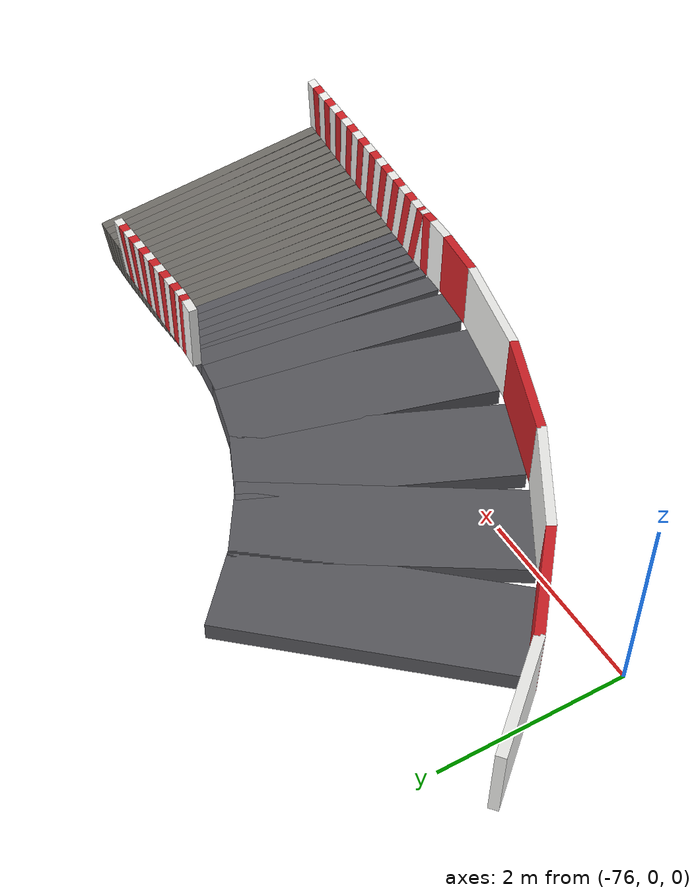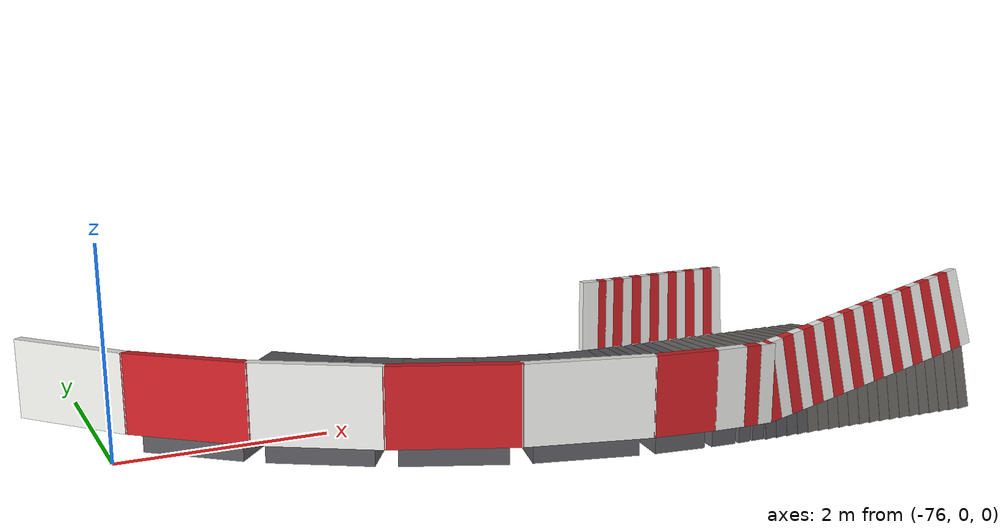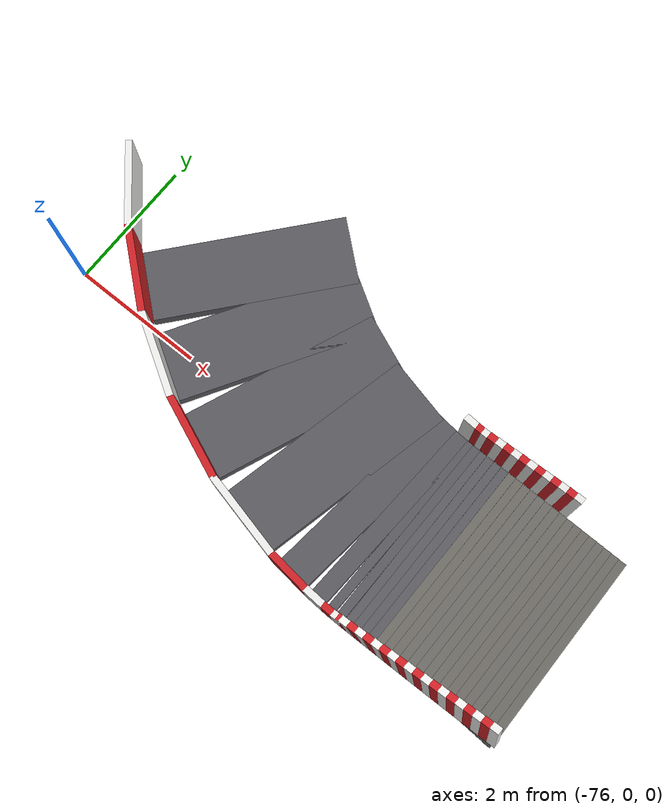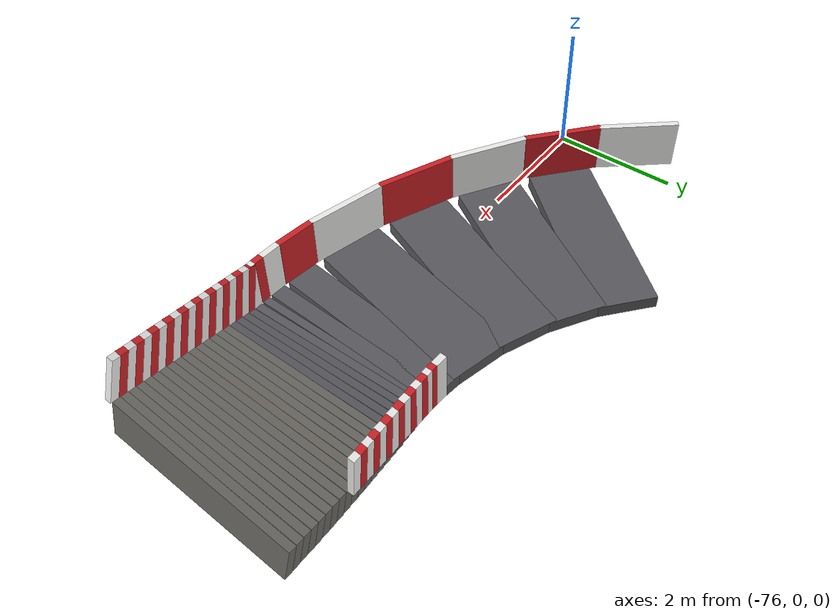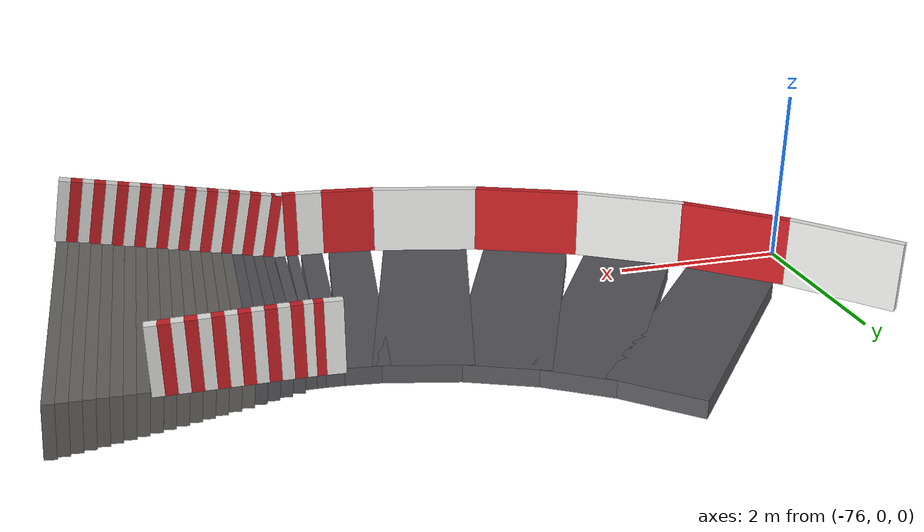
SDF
<sdf version="1.10">
 <world name="ika_parkur">
  <model name="parkur_road">
   <static>true</static>
   <link name="road_0057">
    <pose>-67.529225 -0.056599 -0.100323 0.164496 0.097746 3.141593</pose>
    <collision name="road_0057_col">
     <geometry><box><size>0.128112 3 0.691266</size></box></geometry>
     <surface>
      <friction><ode><mu>1</mu><mu2>1</mu2></ode></friction>
      <contact><ode><kp>1000000</kp><kd>1</kd></ode></contact>
     </surface>
    </collision>
    <visual name="road_0057_vis">
     <geometry><box><size>0.128112 3 0.691266</size></box></geometry>
     <material>
      <ambient>0.42 0.41 0.39 1</ambient>
      <diffuse>0.42 0.41 0.39 1</diffuse>
      <specular>0.1 0.1 0.1 1</specular>
     </material>
    </visual>
   </link>
   <link name="road_0058">
    <pose>-67.655355 -0.051898 -0.101059 0.156271 0.097746 3.141593</pose>
    <collision name="road_0058_col">
     <geometry><box><size>0.128112 3 0.666909</size></box></geometry>
     <surface>
      <friction><ode><mu>1</mu><mu2>1</mu2></ode></friction>
      <contact><ode><kp>1000000</kp><kd>1</kd></ode></contact>
     </surface>
    </collision>
    <visual name="road_0058_vis">
     <geometry><box><size>0.128112 3 0.666909</size></box></geometry>
     <material>
      <ambient>0.42 0.41 0.39 1</ambient>
      <diffuse>0.42 0.41 0.39 1</diffuse>
      <specular>0.1 0.1 0.1 1</specular>
     </material>
    </visual>
   </link>
   <link name="road_0059">
    <pose>-67.781491 -0.047388 -0.101727 0.148047 0.097746 3.141593</pose>
    <collision name="road_0059_col">
     <geometry><box><size>0.128112 3 0.642519</size></box></geometry>
     <surface>
      <friction><ode><mu>1</mu><mu2>1</mu2></ode></friction>
      <contact><ode><kp>1000000</kp><kd>1</kd></ode></contact>
     </surface>
    </collision>
    <visual name="road_0059_vis">
     <geometry><box><size>0.128112 3 0.642519</size></box></geometry>
     <material>
      <ambient>0.42 0.41 0.39 1</ambient>
      <diffuse>0.42 0.41 0.39 1</diffuse>
      <specular>0.1 0.1 0.1 1</specular>
     </material>
    </visual>
   </link>
   <link name="road_0060">
    <pose>-67.907634 -0.043071 -0.102328 0.139822 0.097746 3.141593</pose>
    <collision name="road_0060_col">
     <geometry><box><size>0.128112 3 0.6181</size></box></geometry>
     <surface>
      <friction><ode><mu>1</mu><mu2>1</mu2></ode></friction>
      <contact><ode><kp>1000000</kp><kd>1</kd></ode></contact>
     </surface>
    </collision>
    <visual name="road_0060_vis">
     <geometry><box><size>0.128112 3 0.6181</size></box></geometry>
     <material>
      <ambient>0.42 0.41 0.39 1</ambient>
      <diffuse>0.42 0.41 0.39 1</diffuse>
      <specular>0.1 0.1 0.1 1</specular>
     </material>
    </visual>
   </link>
   <link name="road_0061">
    <pose>-68.033783 -0.038949 -0.102868 0.131597 0.097746 3.141593</pose>
    <collision name="road_0061_col">
     <geometry><box><size>0.128112 3 0.593653</size></box></geometry>
     <surface>
      <friction><ode><mu>1</mu><mu2>1</mu2></ode></friction>
      <contact><ode><kp>1000000</kp><kd>1</kd></ode></contact>
     </surface>
    </collision>
    <visual name="road_0061_vis">
     <geometry><box><size>0.128112 3 0.593653</size></box></geometry>
     <material>
      <ambient>0.42 0.41 0.39 1</ambient>
      <diffuse>0.42 0.41 0.39 1</diffuse>
      <specular>0.1 0.1 0.1 1</specular>
     </material>
    </visual>
   </link>
   <link name="road_0062">
    <pose>-68.159938 -0.035021 -0.103348 0.123372 0.097746 3.141593</pose>
    <collision name="road_0062_col">
     <geometry><box><size>0.128112 3 0.569178</size></box></geometry>
     <surface>
      <friction><ode><mu>1</mu><mu2>1</mu2></ode></friction>
      <contact><ode><kp>1000000</kp><kd>1</kd></ode></contact>
     </surface>
    </collision>
    <visual name="road_0062_vis">
     <geometry><box><size>0.128112 3 0.569178</size></box></geometry>
     <material>
      <ambient>0.42 0.41 0.39 1</ambient>
      <diffuse>0.42 0.41 0.39 1</diffuse>
      <specular>0.1 0.1 0.1 1</specular>
     </material>
    </visual>
   </link>
   <link name="road_0063">
    <pose>-68.286098 -0.03129 -0.103772 0.115147 0.097746 3.141593</pose>
    <collision name="road_0063_col">
     <geometry><box><size>0.128112 3 0.544679</size></box></geometry>
     <surface>
      <friction><ode><mu>1</mu><mu2>1</mu2></ode></friction>
      <contact><ode><kp>1000000</kp><kd>1</kd></ode></contact>
     </surface>
    </collision>
    <visual name="road_0063_vis">
     <geometry><box><size>0.128112 3 0.544679</size></box></geometry>
     <material>
      <ambient>0.42 0.41 0.39 1</ambient>
      <diffuse>0.42 0.41 0.39 1</diffuse>
      <specular>0.1 0.1 0.1 1</specular>
     </material>
    </visual>
   </link>
   <link name="road_0064">
    <pose>-68.412264 -0.027755 -0.104143 0.106923 0.097746 3.141593</pose>
    <collision name="road_0064_col">
     <geometry><box><size>0.128112 3 0.520157</size></box></geometry>
     <surface>
      <friction><ode><mu>1</mu><mu2>1</mu2></ode></friction>
      <contact><ode><kp>1000000</kp><kd>1</kd></ode></contact>
     </surface>
    </collision>
    <visual name="road_0064_vis">
     <geometry><box><size>0.128112 3 0.520157</size></box></geometry>
     <material>
      <ambient>0.42 0.41 0.39 1</ambient>
      <diffuse>0.42 0.41 0.39 1</diffuse>
      <specular>0.1 0.1 0.1 1</specular>
     </material>
    </visual>
   </link>
   <link name="road_0065">
    <pose>-68.538434 -0.024418 -0.104465 0.098698 0.097746 3.141593</pose>
    <collision name="road_0065_col">
     <geometry><box><size>0.128112 3 0.495613</size></box></geometry>
     <surface>
      <friction><ode><mu>1</mu><mu2>1</mu2></ode></friction>
      <contact><ode><kp>1000000</kp><kd>1</kd></ode></contact>
     </surface>
    </collision>
    <visual name="road_0065_vis">
     <geometry><box><size>0.128112 3 0.495613</size></box></geometry>
     <material>
      <ambient>0.42 0.41 0.39 1</ambient>
      <diffuse>0.42 0.41 0.39 1</diffuse>
      <specular>0.1 0.1 0.1 1</specular>
     </material>
    </visual>
   </link>
   <link name="road_0066">
    <pose>-68.664609 -0.02128 -0.10474 0.090473 0.097746 3.141593</pose>
    <collision name="road_0066_col">
     <geometry><box><size>0.128112 3 0.471049</size></box></geometry>
     <surface>
      <friction><ode><mu>1</mu><mu2>1</mu2></ode></friction>
      <contact><ode><kp>1000000</kp><kd>1</kd></ode></contact>
     </surface>
    </collision>
    <visual name="road_0066_vis">
     <geometry><box><size>0.128112 3 0.471049</size></box></geometry>
     <material>
      <ambient>0.42 0.41 0.39 1</ambient>
      <diffuse>0.42 0.41 0.39 1</diffuse>
      <specular>0.1 0.1 0.1 1</specular>
     </material>
    </visual>
   </link>
   <link name="road_0067">
    <pose>-68.790788 -0.01834 -0.104973 0.082248 0.097746 3.141593</pose>
    <collision name="road_0067_col">
     <geometry><box><size>0.128112 3 0.446466</size></box></geometry>
     <surface>
      <friction><ode><mu>1</mu><mu2>1</mu2></ode></friction>
      <contact><ode><kp>1000000</kp><kd>1</kd></ode></contact>
     </surface>
    </collision>
    <visual name="road_0067_vis">
     <geometry><box><size>0.128112 3 0.446466</size></box></geometry>
     <material>
      <ambient>0.42 0.41 0.39 1</ambient>
      <diffuse>0.42 0.41 0.39 1</diffuse>
      <specular>0.1 0.1 0.1 1</specular>
     </material>
    </visual>
   </link>
   <link name="road_0068">
    <pose>-68.916971 -0.0156 -0.105165 0.074023 0.097746 3.141593</pose>
    <collision name="road_0068_col">
     <geometry><box><size>0.128112 3 0.421867</size></box></geometry>
     <surface>
      <friction><ode><mu>1</mu><mu2>1</mu2></ode></friction>
      <contact><ode><kp>1000000</kp><kd>1</kd></ode></contact>
     </surface>
    </collision>
    <visual name="road_0068_vis">
     <geometry><box><size>0.128112 3 0.421867</size></box></geometry>
     <material>
      <ambient>0.42 0.41 0.39 1</ambient>
      <diffuse>0.42 0.41 0.39 1</diffuse>
      <specular>0.1 0.1 0.1 1</specular>
     </material>
    </visual>
   </link>
   <link name="road_0069">
    <pose>-69.043158 -0.01306 -0.105321 0.065799 0.097746 3.141593</pose>
    <collision name="road_0069_col">
     <geometry><box><size>0.128112 3 0.397253</size></box></geometry>
     <surface>
      <friction><ode><mu>1</mu><mu2>1</mu2></ode></friction>
      <contact><ode><kp>1000000</kp><kd>1</kd></ode></contact>
     </surface>
    </collision>
    <visual name="road_0069_vis">
     <geometry><box><size>0.128112 3 0.397253</size></box></geometry>
     <material>
      <ambient>0.42 0.41 0.39 1</ambient>
      <diffuse>0.42 0.41 0.39 1</diffuse>
      <specular>0.1 0.1 0.1 1</specular>
     </material>
    </visual>
   </link>
   <link name="road_0070">
    <pose>-69.169348 -0.010721 -0.105444 0.057574 0.097746 3.141593</pose>
    <collision name="road_0070_col">
     <geometry><box><size>0.128112 3 0.372626</size></box></geometry>
     <surface>
      <friction><ode><mu>1</mu><mu2>1</mu2></ode></friction>
      <contact><ode><kp>1000000</kp><kd>1</kd></ode></contact>
     </surface>
    </collision>
    <visual name="road_0070_vis">
     <geometry><box><size>0.128112 3 0.372626</size></box></geometry>
     <material>
      <ambient>0.42 0.41 0.39 1</ambient>
      <diffuse>0.42 0.41 0.39 1</diffuse>
      <specular>0.1 0.1 0.1 1</specular>
     </material>
    </visual>
   </link>
   <link name="road_0071">
    <pose>-69.295541 -0.008583 -0.105537 0.049349 0.097746 3.141593</pose>
    <collision name="road_0071_col">
     <geometry><box><size>0.128112 3 0.347987</size></box></geometry>
     <surface>
      <friction><ode><mu>1</mu><mu2>1</mu2></ode></friction>
      <contact><ode><kp>1000000</kp><kd>1</kd></ode></contact>
     </surface>
    </collision>
    <visual name="road_0071_vis">
     <geometry><box><size>0.128112 3 0.347987</size></box></geometry>
     <material>
      <ambient>0.42 0.41 0.39 1</ambient>
      <diffuse>0.42 0.41 0.39 1</diffuse>
      <specular>0.1 0.1 0.1 1</specular>
     </material>
    </visual>
   </link>
   <link name="road_0072">
    <pose>-69.421736 -0.006647 -0.105603 0.041124 0.097746 3.141593</pose>
    <collision name="road_0072_col">
     <geometry><box><size>0.128112 3 0.323337</size></box></geometry>
     <surface>
      <friction><ode><mu>1</mu><mu2>1</mu2></ode></friction>
      <contact><ode><kp>1000000</kp><kd>1</kd></ode></contact>
     </surface>
    </collision>
    <visual name="road_0072_vis">
     <geometry><box><size>0.128112 3 0.323337</size></box></geometry>
     <material>
      <ambient>0.42 0.41 0.39 1</ambient>
      <diffuse>0.42 0.41 0.39 1</diffuse>
      <specular>0.1 0.1 0.1 1</specular>
     </material>
    </visual>
   </link>
   <link name="road_0073">
    <pose>-69.547934 -0.004912 -0.105646 0.032899 0.097746 3.141593</pose>
    <collision name="road_0073_col">
     <geometry><box><size>0.128112 3 0.29868</size></box></geometry>
     <surface>
      <friction><ode><mu>1</mu><mu2>1</mu2></ode></friction>
      <contact><ode><kp>1000000</kp><kd>1</kd></ode></contact>
     </surface>
    </collision>
    <visual name="road_0073_vis">
     <geometry><box><size>0.128112 3 0.29868</size></box></geometry>
     <material>
      <ambient>0.35 0.35 0.37 1</ambient>
      <diffuse>0.35 0.35 0.37 1</diffuse>
      <specular>0.1 0.1 0.1 1</specular>
     </material>
    </visual>
   </link>
   <link name="road_0074">
    <pose>-69.674133 -0.00338 -0.105669 0.024674 0.097746 3.141593</pose>
    <collision name="road_0074_col">
     <geometry><box><size>0.128112 3 0.274016</size></box></geometry>
     <surface>
      <friction><ode><mu>1</mu><mu2>1</mu2></ode></friction>
      <contact><ode><kp>1000000</kp><kd>1</kd></ode></contact>
     </surface>
    </collision>
    <visual name="road_0074_vis">
     <geometry><box><size>0.128112 3 0.274016</size></box></geometry>
     <material>
      <ambient>0.35 0.35 0.37 1</ambient>
      <diffuse>0.35 0.35 0.37 1</diffuse>
      <specular>0.1 0.1 0.1 1</specular>
     </material>
    </visual>
   </link>
   <link name="road_0075">
    <pose>-69.800335 -0.002051 -0.105676 0.01645 0.097746 3.141593</pose>
    <collision name="road_0075_col">
     <geometry><box><size>0.128112 3 0.249347</size></box></geometry>
     <surface>
      <friction><ode><mu>1</mu><mu2>1</mu2></ode></friction>
      <contact><ode><kp>1000000</kp><kd>1</kd></ode></contact>
     </surface>
    </collision>
    <visual name="road_0075_vis">
     <geometry><box><size>0.128112 3 0.249347</size></box></geometry>
     <material>
      <ambient>0.35 0.35 0.37 1</ambient>
      <diffuse>0.35 0.35 0.37 1</diffuse>
      <specular>0.1 0.1 0.1 1</specular>
     </material>
    </visual>
   </link>
   <link name="road_0076">
    <pose>-69.926537 -0.000924 -0.105668 0.008225 0.097746 3.141593</pose>
    <collision name="road_0076_col">
     <geometry><box><size>0.128112 3 0.224674</size></box></geometry>
     <surface>
      <friction><ode><mu>1</mu><mu2>1</mu2></ode></friction>
      <contact><ode><kp>1000000</kp><kd>1</kd></ode></contact>
     </surface>
    </collision>
    <visual name="road_0076_vis">
     <geometry><box><size>0.128112 3 0.224674</size></box></geometry>
     <material>
      <ambient>0.35 0.35 0.37 1</ambient>
      <diffuse>0.35 0.35 0.37 1</diffuse>
      <specular>0.1 0.1 0.1 1</specular>
     </material>
    </visual>
   </link>
   <link name="road_0077">
    <pose>-70.06381 0.000626 -0.1 0 0 3.131775</pose>
    <collision name="road_0077_col">
     <geometry><box><size>0.130178 3 0.2</size></box></geometry>
     <surface>
      <friction><ode><mu>1</mu><mu2>1</mu2></ode></friction>
      <contact><ode><kp>1000000</kp><kd>1</kd></ode></contact>
     </surface>
    </collision>
    <visual name="road_0077_vis">
     <geometry><box><size>0.130178 3 0.2</size></box></geometry>
     <material>
      <ambient>0.35 0.35 0.37 1</ambient>
      <diffuse>0.35 0.35 0.37 1</diffuse>
      <specular>0.1 0.1 0.1 1</specular>
     </material>
    </visual>
   </link>
   <link name="road_0078">
    <pose>-70.191404 0.003132 -0.1 0 0 3.11214</pose>
    <collision name="road_0078_col">
     <geometry><box><size>0.130178 3 0.2</size></box></geometry>
     <surface>
      <friction><ode><mu>1</mu><mu2>1</mu2></ode></friction>
      <contact><ode><kp>1000000</kp><kd>1</kd></ode></contact>
     </surface>
    </collision>
    <visual name="road_0078_vis">
     <geometry><box><size>0.130178 3 0.2</size></box></geometry>
     <material>
      <ambient>0.35 0.35 0.37 1</ambient>
      <diffuse>0.35 0.35 0.37 1</diffuse>
      <specular>0.1 0.1 0.1 1</specular>
     </material>
    </visual>
   </link>
   <link name="road_0079">
    <pose>-70.382586 0.012524 -0.1 0 0 3.082688</pose>
    <collision name="road_0079_col">
     <geometry><box><size>0.260343 3 0.2</size></box></geometry>
     <surface>
      <friction><ode><mu>1</mu><mu2>1</mu2></ode></friction>
      <contact><ode><kp>1000000</kp><kd>1</kd></ode></contact>
     </surface>
    </collision>
    <visual name="road_0079_vis">
     <geometry><box><size>0.260343 3 0.2</size></box></geometry>
     <material>
      <ambient>0.35 0.35 0.37 1</ambient>
      <diffuse>0.35 0.35 0.37 1</diffuse>
      <specular>0.1 0.1 0.1 1</specular>
     </material>
    </visual>
   </link>
   <link name="road_0080">
    <pose>-70.763404 0.050032 -0.1 0 0 3.023783</pose>
    <collision name="road_0080_col">
     <geometry><box><size>0.520585 3 0.2</size></box></geometry>
     <surface>
      <friction><ode><mu>1</mu><mu2>1</mu2></ode></friction>
      <contact><ode><kp>1000000</kp><kd>1</kd></ode></contact>
     </surface>
    </collision>
    <visual name="road_0080_vis">
     <geometry><box><size>0.520585 3 0.2</size></box></geometry>
     <material>
      <ambient>0.35 0.35 0.37 1</ambient>
      <diffuse>0.35 0.35 0.37 1</diffuse>
      <specular>0.1 0.1 0.1 1</specular>
     </material>
    </visual>
   </link>
   <link name="road_0081">
    <pose>-71.512717 0.199079 -0.1 0 0 2.905973</pose>
    <collision name="road_0081_col">
     <geometry><box><size>1.040368 3 0.2</size></box></geometry>
     <surface>
      <friction><ode><mu>1</mu><mu2>1</mu2></ode></friction>
      <contact><ode><kp>1000000</kp><kd>1</kd></ode></contact>
     </surface>
    </collision>
    <visual name="road_0081_vis">
     <geometry><box><size>1.040368 3 0.2</size></box></geometry>
     <material>
      <ambient>0.35 0.35 0.37 1</ambient>
      <diffuse>0.35 0.35 0.37 1</diffuse>
      <specular>0.1 0.1 0.1 1</specular>
     </material>
    </visual>
   </link>
   <link name="road_0082">
    <pose>-72.479774 0.513295 -0.1 0 0 2.748894</pose>
    <collision name="road_0082_col">
     <geometry><box><size>1.040368 3 0.2</size></box></geometry>
     <surface>
      <friction><ode><mu>1</mu><mu2>1</mu2></ode></friction>
      <contact><ode><kp>1000000</kp><kd>1</kd></ode></contact>
     </surface>
    </collision>
    <visual name="road_0082_vis">
     <geometry><box><size>1.040368 3 0.2</size></box></geometry>
     <material>
      <ambient>0.35 0.35 0.37 1</ambient>
      <diffuse>0.35 0.35 0.37 1</diffuse>
      <specular>0.1 0.1 0.1 1</specular>
     </material>
    </visual>
   </link>
   <link name="road_0083">
    <pose>-73.385771 0.974924 -0.1 0 0 2.591814</pose>
    <collision name="road_0083_col">
     <geometry><box><size>1.040368 3 0.2</size></box></geometry>
     <surface>
      <friction><ode><mu>1</mu><mu2>1</mu2></ode></friction>
      <contact><ode><kp>1000000</kp><kd>1</kd></ode></contact>
     </surface>
    </collision>
    <visual name="road_0083_vis">
     <geometry><box><size>1.040368 3 0.2</size></box></geometry>
     <material>
      <ambient>0.35 0.35 0.37 1</ambient>
      <diffuse>0.35 0.35 0.37 1</diffuse>
      <specular>0.1 0.1 0.1 1</specular>
     </material>
    </visual>
   </link>
   <link name="road_0084">
    <pose>-74.208399 1.572598 -0.1 0 0 2.434734</pose>
    <collision name="road_0084_col">
     <geometry><box><size>1.040368 3 0.2</size></box></geometry>
     <surface>
      <friction><ode><mu>1</mu><mu2>1</mu2></ode></friction>
      <contact><ode><kp>1000000</kp><kd>1</kd></ode></contact>
     </surface>
    </collision>
    <visual name="road_0084_vis">
     <geometry><box><size>1.040368 3 0.2</size></box></geometry>
     <material>
      <ambient>0.35 0.35 0.37 1</ambient>
      <diffuse>0.35 0.35 0.37 1</diffuse>
      <specular>0.1 0.1 0.1 1</specular>
     </material>
    </visual>
   </link>
  </model>
  <model name="parkur_barriers">
   <static>true</static>
   <link name="barrier_l_0057">
    <pose>-67.640464 -1.465853 0.873578 0.164496 0.196155 -3.125307</pose>
    <collision name="barrier_l_0057_col">
     <geometry><box><size>0.13001 0.1 0.8</size></box></geometry>
     <surface>
      <friction><ode><mu>0.6</mu><mu2>0.6</mu2></ode></friction>
      <contact><ode><kp>1000000</kp><kd>1</kd></ode></contact>
     </surface>
    </collision>
    <visual name="barrier_l_0057_vis">
     <geometry><box><size>0.13001 0.1 0.8</size></box></geometry>
     <material>
      <ambient>0.93 0.93 0.92 1</ambient>
      <diffuse>0.93 0.93 0.92 1</diffuse>
      <specular>0.1 0.1 0.1 1</specular>
     </material>
    </visual>
   </link>
   <link name="barrier_l_0058">
    <pose>-67.765513 -1.471023 0.849234 0.156271 0.196283 -3.126135</pose>
    <collision name="barrier_l_0058_col">
     <geometry><box><size>0.130012 0.1 0.8</size></box></geometry>
     <surface>
      <friction><ode><mu>0.6</mu><mu2>0.6</mu2></ode></friction>
      <contact><ode><kp>1000000</kp><kd>1</kd></ode></contact>
     </surface>
    </collision>
    <visual name="barrier_l_0058_vis">
     <geometry><box><size>0.130012 0.1 0.8</size></box></geometry>
     <material>
      <ambient>0.81 0.13 0.15 1</ambient>
      <diffuse>0.81 0.13 0.15 1</diffuse>
      <specular>0.1 0.1 0.1 1</specular>
     </material>
    </visual>
   </link>
   <link name="barrier_l_0059">
    <pose>-67.890559 -1.476092 0.824847 0.148047 0.196405 -3.126965</pose>
    <collision name="barrier_l_0059_col">
     <geometry><box><size>0.130013 0.1 0.8</size></box></geometry>
     <surface>
      <friction><ode><mu>0.6</mu><mu2>0.6</mu2></ode></friction>
      <contact><ode><kp>1000000</kp><kd>1</kd></ode></contact>
     </surface>
    </collision>
    <visual name="barrier_l_0059_vis">
     <geometry><box><size>0.130013 0.1 0.8</size></box></geometry>
     <material>
      <ambient>0.93 0.93 0.92 1</ambient>
      <diffuse>0.93 0.93 0.92 1</diffuse>
      <specular>0.1 0.1 0.1 1</specular>
     </material>
    </visual>
   </link>
   <link name="barrier_l_0060">
    <pose>-68.015602 -1.481061 0.80042 0.139822 0.196519 -3.127795</pose>
    <collision name="barrier_l_0060_col">
     <geometry><box><size>0.130015 0.1 0.8</size></box></geometry>
     <surface>
      <friction><ode><mu>0.6</mu><mu2>0.6</mu2></ode></friction>
      <contact><ode><kp>1000000</kp><kd>1</kd></ode></contact>
     </surface>
    </collision>
    <visual name="barrier_l_0060_vis">
     <geometry><box><size>0.130015 0.1 0.8</size></box></geometry>
     <material>
      <ambient>0.81 0.13 0.15 1</ambient>
      <diffuse>0.81 0.13 0.15 1</diffuse>
      <specular>0.1 0.1 0.1 1</specular>
     </material>
    </visual>
   </link>
   <link name="barrier_l_0061">
    <pose>-68.140643 -1.48593 0.775953 0.131597 0.196627 -3.128627</pose>
    <collision name="barrier_l_0061_col">
     <geometry><box><size>0.130016 0.1 0.8</size></box></geometry>
     <surface>
      <friction><ode><mu>0.6</mu><mu2>0.6</mu2></ode></friction>
      <contact><ode><kp>1000000</kp><kd>1</kd></ode></contact>
     </surface>
    </collision>
    <visual name="barrier_l_0061_vis">
     <geometry><box><size>0.130016 0.1 0.8</size></box></geometry>
     <material>
      <ambient>0.93 0.93 0.92 1</ambient>
      <diffuse>0.93 0.93 0.92 1</diffuse>
      <specular>0.1 0.1 0.1 1</specular>
     </material>
    </visual>
   </link>
   <link name="barrier_l_0062">
    <pose>-68.265682 -1.490699 0.751446 0.123372 0.196729 -3.129459</pose>
    <collision name="barrier_l_0062_col">
     <geometry><box><size>0.130017 0.1 0.8</size></box></geometry>
     <surface>
      <friction><ode><mu>0.6</mu><mu2>0.6</mu2></ode></friction>
      <contact><ode><kp>1000000</kp><kd>1</kd></ode></contact>
     </surface>
    </collision>
    <visual name="barrier_l_0062_vis">
     <geometry><box><size>0.130017 0.1 0.8</size></box></geometry>
     <material>
      <ambient>0.81 0.13 0.15 1</ambient>
      <diffuse>0.81 0.13 0.15 1</diffuse>
      <specular>0.1 0.1 0.1 1</specular>
     </material>
    </visual>
   </link>
   <link name="barrier_l_0063">
    <pose>-68.390718 -1.495366 0.726902 0.115147 0.196823 -3.130292</pose>
    <collision name="barrier_l_0063_col">
     <geometry><box><size>0.130018 0.1 0.8</size></box></geometry>
     <surface>
      <friction><ode><mu>0.6</mu><mu2>0.6</mu2></ode></friction>
      <contact><ode><kp>1000000</kp><kd>1</kd></ode></contact>
     </surface>
    </collision>
    <visual name="barrier_l_0063_vis">
     <geometry><box><size>0.130018 0.1 0.8</size></box></geometry>
     <material>
      <ambient>0.93 0.93 0.92 1</ambient>
      <diffuse>0.93 0.93 0.92 1</diffuse>
      <specular>0.1 0.1 0.1 1</specular>
     </material>
    </visual>
   </link>
   <link name="barrier_l_0064">
    <pose>-68.515752 -1.499932 0.70232 0.106923 0.196911 -3.131126</pose>
    <collision name="barrier_l_0064_col">
     <geometry><box><size>0.13002 0.1 0.8</size></box></geometry>
     <surface>
      <friction><ode><mu>0.6</mu><mu2>0.6</mu2></ode></friction>
      <contact><ode><kp>1000000</kp><kd>1</kd></ode></contact>
     </surface>
    </collision>
    <visual name="barrier_l_0064_vis">
     <geometry><box><size>0.13002 0.1 0.8</size></box></geometry>
     <material>
      <ambient>0.81 0.13 0.15 1</ambient>
      <diffuse>0.81 0.13 0.15 1</diffuse>
      <specular>0.1 0.1 0.1 1</specular>
     </material>
    </visual>
   </link>
   <link name="barrier_l_0065">
    <pose>-68.640783 -1.504396 0.677701 0.098698 0.196992 -3.131961</pose>
    <collision name="barrier_l_0065_col">
     <geometry><box><size>0.130021 0.1 0.8</size></box></geometry>
     <surface>
      <friction><ode><mu>0.6</mu><mu2>0.6</mu2></ode></friction>
      <contact><ode><kp>1000000</kp><kd>1</kd></ode></contact>
     </surface>
    </collision>
    <visual name="barrier_l_0065_vis">
     <geometry><box><size>0.130021 0.1 0.8</size></box></geometry>
     <material>
      <ambient>0.93 0.93 0.92 1</ambient>
      <diffuse>0.93 0.93 0.92 1</diffuse>
      <specular>0.1 0.1 0.1 1</specular>
     </material>
    </visual>
   </link>
   <link name="barrier_r_0065">
    <pose>-68.560738 1.582459 0.392622 0.098698 -0.003473 3.131961</pose>
    <collision name="barrier_r_0065_col">
     <geometry><box><size>0.127507 0.1 0.8</size></box></geometry>
     <surface>
      <friction><ode><mu>0.6</mu><mu2>0.6</mu2></ode></friction>
      <contact><ode><kp>1000000</kp><kd>1</kd></ode></contact>
     </surface>
    </collision>
    <visual name="barrier_r_0065_vis">
     <geometry><box><size>0.127507 0.1 0.8</size></box></geometry>
     <material>
      <ambient>0.93 0.93 0.92 1</ambient>
      <diffuse>0.93 0.93 0.92 1</diffuse>
      <specular>0.1 0.1 0.1 1</specular>
     </material>
    </visual>
   </link>
   <link name="barrier_l_0066">
    <pose>-68.765812 -1.508758 0.653046 0.090473 0.197066 -3.132796</pose>
    <collision name="barrier_l_0066_col">
     <geometry><box><size>0.130021 0.1 0.8</size></box></geometry>
     <surface>
      <friction><ode><mu>0.6</mu><mu2>0.6</mu2></ode></friction>
      <contact><ode><kp>1000000</kp><kd>1</kd></ode></contact>
     </surface>
    </collision>
    <visual name="barrier_l_0066_vis">
     <geometry><box><size>0.130021 0.1 0.8</size></box></geometry>
     <material>
      <ambient>0.81 0.13 0.15 1</ambient>
      <diffuse>0.81 0.13 0.15 1</diffuse>
      <specular>0.1 0.1 0.1 1</specular>
     </material>
    </visual>
   </link>
   <link name="barrier_r_0066">
    <pose>-68.685768 1.580336 0.393371 0.090473 -0.003549 3.132796</pose>
    <collision name="barrier_r_0066_col">
     <geometry><box><size>0.127506 0.1 0.8</size></box></geometry>
     <surface>
      <friction><ode><mu>0.6</mu><mu2>0.6</mu2></ode></friction>
      <contact><ode><kp>1000000</kp><kd>1</kd></ode></contact>
     </surface>
    </collision>
    <visual name="barrier_r_0066_vis">
     <geometry><box><size>0.127506 0.1 0.8</size></box></geometry>
     <material>
      <ambient>0.81 0.13 0.15 1</ambient>
      <diffuse>0.81 0.13 0.15 1</diffuse>
      <specular>0.1 0.1 0.1 1</specular>
     </material>
    </visual>
   </link>
   <link name="barrier_l_0067">
    <pose>-68.890838 -1.513018 0.628357 0.082248 0.197134 -3.133632</pose>
    <collision name="barrier_l_0067_col">
     <geometry><box><size>0.130022 0.1 0.8</size></box></geometry>
     <surface>
      <friction><ode><mu>0.6</mu><mu2>0.6</mu2></ode></friction>
      <contact><ode><kp>1000000</kp><kd>1</kd></ode></contact>
     </surface>
    </collision>
    <visual name="barrier_l_0067_vis">
     <geometry><box><size>0.130022 0.1 0.8</size></box></geometry>
     <material>
      <ambient>0.93 0.93 0.92 1</ambient>
      <diffuse>0.93 0.93 0.92 1</diffuse>
      <specular>0.1 0.1 0.1 1</specular>
     </material>
    </visual>
   </link>
   <link name="barrier_r_0067">
    <pose>-68.810796 1.578107 0.394103 0.082248 -0.003618 3.133632</pose>
    <collision name="barrier_r_0067_col">
     <geometry><box><size>0.127505 0.1 0.8</size></box></geometry>
     <surface>
      <friction><ode><mu>0.6</mu><mu2>0.6</mu2></ode></friction>
      <contact><ode><kp>1000000</kp><kd>1</kd></ode></contact>
     </surface>
    </collision>
    <visual name="barrier_r_0067_vis">
     <geometry><box><size>0.127505 0.1 0.8</size></box></geometry>
     <material>
      <ambient>0.93 0.93 0.92 1</ambient>
      <diffuse>0.93 0.93 0.92 1</diffuse>
      <specular>0.1 0.1 0.1 1</specular>
     </material>
    </visual>
   </link>
   <link name="barrier_l_0068">
    <pose>-69.015862 -1.517176 0.603633 0.074023 0.197195 -3.134469</pose>
    <collision name="barrier_l_0068_col">
     <geometry><box><size>0.130023 0.1 0.8</size></box></geometry>
     <surface>
      <friction><ode><mu>0.6</mu><mu2>0.6</mu2></ode></friction>
      <contact><ode><kp>1000000</kp><kd>1</kd></ode></contact>
     </surface>
    </collision>
    <visual name="barrier_l_0068_vis">
     <geometry><box><size>0.130023 0.1 0.8</size></box></geometry>
     <material>
      <ambient>0.81 0.13 0.15 1</ambient>
      <diffuse>0.81 0.13 0.15 1</diffuse>
      <specular>0.1 0.1 0.1 1</specular>
     </material>
    </visual>
   </link>
   <link name="barrier_r_0068">
    <pose>-68.935821 1.575772 0.394816 0.074023 -0.00368 3.134469</pose>
    <collision name="barrier_r_0068_col">
     <geometry><box><size>0.127504 0.1 0.8</size></box></geometry>
     <surface>
      <friction><ode><mu>0.6</mu><mu2>0.6</mu2></ode></friction>
      <contact><ode><kp>1000000</kp><kd>1</kd></ode></contact>
     </surface>
    </collision>
    <visual name="barrier_r_0068_vis">
     <geometry><box><size>0.127504 0.1 0.8</size></box></geometry>
     <material>
      <ambient>0.81 0.13 0.15 1</ambient>
      <diffuse>0.81 0.13 0.15 1</diffuse>
      <specular>0.1 0.1 0.1 1</specular>
     </material>
    </visual>
   </link>
   <link name="barrier_l_0069">
    <pose>-69.140883 -1.521231 0.578876 0.065799 0.197249 -3.135306</pose>
    <collision name="barrier_l_0069_col">
     <geometry><box><size>0.130024 0.1 0.8</size></box></geometry>
     <surface>
      <friction><ode><mu>0.6</mu><mu2>0.6</mu2></ode></friction>
      <contact><ode><kp>1000000</kp><kd>1</kd></ode></contact>
     </surface>
    </collision>
    <visual name="barrier_l_0069_vis">
     <geometry><box><size>0.130024 0.1 0.8</size></box></geometry>
     <material>
      <ambient>0.93 0.93 0.92 1</ambient>
      <diffuse>0.93 0.93 0.92 1</diffuse>
      <specular>0.1 0.1 0.1 1</specular>
     </material>
    </visual>
   </link>
   <link name="barrier_r_0069">
    <pose>-69.060844 1.573329 0.395509 0.065799 -0.003735 3.135306</pose>
    <collision name="barrier_r_0069_col">
     <geometry><box><size>0.127503 0.1 0.8</size></box></geometry>
     <surface>
      <friction><ode><mu>0.6</mu><mu2>0.6</mu2></ode></friction>
      <contact><ode><kp>1000000</kp><kd>1</kd></ode></contact>
     </surface>
    </collision>
    <visual name="barrier_r_0069_vis">
     <geometry><box><size>0.127503 0.1 0.8</size></box></geometry>
     <material>
      <ambient>0.93 0.93 0.92 1</ambient>
      <diffuse>0.93 0.93 0.92 1</diffuse>
      <specular>0.1 0.1 0.1 1</specular>
     </material>
    </visual>
   </link>
   <link name="barrier_l_0070">
    <pose>-69.265902 -1.525183 0.554087 0.057574 0.197296 -3.136143</pose>
    <collision name="barrier_l_0070_col">
     <geometry><box><size>0.130024 0.1 0.8</size></box></geometry>
     <surface>
      <friction><ode><mu>0.6</mu><mu2>0.6</mu2></ode></friction>
      <contact><ode><kp>1000000</kp><kd>1</kd></ode></contact>
     </surface>
    </collision>
    <visual name="barrier_l_0070_vis">
     <geometry><box><size>0.130024 0.1 0.8</size></box></geometry>
     <material>
      <ambient>0.81 0.13 0.15 1</ambient>
      <diffuse>0.81 0.13 0.15 1</diffuse>
      <specular>0.1 0.1 0.1 1</specular>
     </material>
    </visual>
   </link>
   <link name="barrier_r_0070">
    <pose>-69.185864 1.570781 0.396182 0.057574 -0.003784 3.136143</pose>
    <collision name="barrier_r_0070_col">
     <geometry><box><size>0.127503 0.1 0.8</size></box></geometry>
     <surface>
      <friction><ode><mu>0.6</mu><mu2>0.6</mu2></ode></friction>
      <contact><ode><kp>1000000</kp><kd>1</kd></ode></contact>
     </surface>
    </collision>
    <visual name="barrier_r_0070_vis">
     <geometry><box><size>0.127503 0.1 0.8</size></box></geometry>
     <material>
      <ambient>0.81 0.13 0.15 1</ambient>
      <diffuse>0.81 0.13 0.15 1</diffuse>
      <specular>0.1 0.1 0.1 1</specular>
     </material>
    </visual>
   </link>
   <link name="barrier_l_0071">
    <pose>-69.390918 -1.529031 0.529266 0.049349 0.197337 -3.136981</pose>
    <collision name="barrier_l_0071_col">
     <geometry><box><size>0.130025 0.1 0.8</size></box></geometry>
     <surface>
      <friction><ode><mu>0.6</mu><mu2>0.6</mu2></ode></friction>
      <contact><ode><kp>1000000</kp><kd>1</kd></ode></contact>
     </surface>
    </collision>
    <visual name="barrier_l_0071_vis">
     <geometry><box><size>0.130025 0.1 0.8</size></box></geometry>
     <material>
      <ambient>0.93 0.93 0.92 1</ambient>
      <diffuse>0.93 0.93 0.92 1</diffuse>
      <specular>0.1 0.1 0.1 1</specular>
     </material>
    </visual>
   </link>
   <link name="barrier_r_0071">
    <pose>-69.310881 1.568126 0.396833 0.049349 -0.003825 3.136981</pose>
    <collision name="barrier_r_0071_col">
     <geometry><box><size>0.127502 0.1 0.8</size></box></geometry>
     <surface>
      <friction><ode><mu>0.6</mu><mu2>0.6</mu2></ode></friction>
      <contact><ode><kp>1000000</kp><kd>1</kd></ode></contact>
     </surface>
    </collision>
    <visual name="barrier_r_0071_vis">
     <geometry><box><size>0.127502 0.1 0.8</size></box></geometry>
     <material>
      <ambient>0.93 0.93 0.92 1</ambient>
      <diffuse>0.93 0.93 0.92 1</diffuse>
      <specular>0.1 0.1 0.1 1</specular>
     </material>
    </visual>
   </link>
   <link name="barrier_l_0072">
    <pose>-69.515932 -1.532776 0.504415 0.041124 0.197371 -3.137819</pose>
    <collision name="barrier_l_0072_col">
     <geometry><box><size>0.130025 0.1 0.8</size></box></geometry>
     <surface>
      <friction><ode><mu>0.6</mu><mu2>0.6</mu2></ode></friction>
      <contact><ode><kp>1000000</kp><kd>1</kd></ode></contact>
     </surface>
    </collision>
    <visual name="barrier_l_0072_vis">
     <geometry><box><size>0.130025 0.1 0.8</size></box></geometry>
     <material>
      <ambient>0.81 0.13 0.15 1</ambient>
      <diffuse>0.81 0.13 0.15 1</diffuse>
      <specular>0.1 0.1 0.1 1</specular>
     </material>
    </visual>
   </link>
   <link name="barrier_r_0072">
    <pose>-69.435895 1.565364 0.397462 0.041124 -0.003859 3.137819</pose>
    <collision name="barrier_r_0072_col">
     <geometry><box><size>0.127502 0.1 0.8</size></box></geometry>
     <surface>
      <friction><ode><mu>0.6</mu><mu2>0.6</mu2></ode></friction>
      <contact><ode><kp>1000000</kp><kd>1</kd></ode></contact>
     </surface>
    </collision>
    <visual name="barrier_r_0072_vis">
     <geometry><box><size>0.127502 0.1 0.8</size></box></geometry>
     <material>
      <ambient>0.81 0.13 0.15 1</ambient>
      <diffuse>0.81 0.13 0.15 1</diffuse>
      <specular>0.1 0.1 0.1 1</specular>
     </material>
    </visual>
   </link>
   <link name="barrier_l_0073">
    <pose>-69.640943 -1.536418 0.479533 0.032899 0.197398 -3.138657</pose>
    <collision name="barrier_l_0073_col">
     <geometry><box><size>0.130026 0.1 0.8</size></box></geometry>
     <surface>
      <friction><ode><mu>0.6</mu><mu2>0.6</mu2></ode></friction>
      <contact><ode><kp>1000000</kp><kd>1</kd></ode></contact>
     </surface>
    </collision>
    <visual name="barrier_l_0073_vis">
     <geometry><box><size>0.130026 0.1 0.8</size></box></geometry>
     <material>
      <ambient>0.93 0.93 0.92 1</ambient>
      <diffuse>0.93 0.93 0.92 1</diffuse>
      <specular>0.1 0.1 0.1 1</specular>
     </material>
    </visual>
   </link>
   <link name="barrier_r_0073">
    <pose>-69.560907 1.562497 0.398068 0.032899 -0.003887 3.138657</pose>
    <collision name="barrier_r_0073_col">
     <geometry><box><size>0.127502 0.1 0.8</size></box></geometry>
     <surface>
      <friction><ode><mu>0.6</mu><mu2>0.6</mu2></ode></friction>
      <contact><ode><kp>1000000</kp><kd>1</kd></ode></contact>
     </surface>
    </collision>
    <visual name="barrier_r_0073_vis">
     <geometry><box><size>0.127502 0.1 0.8</size></box></geometry>
     <material>
      <ambient>0.93 0.93 0.92 1</ambient>
      <diffuse>0.93 0.93 0.92 1</diffuse>
      <specular>0.1 0.1 0.1 1</specular>
     </material>
    </visual>
   </link>
   <link name="barrier_l_0074">
    <pose>-69.765952 -1.539955 0.454623 0.024674 0.197418 -3.139496</pose>
    <collision name="barrier_l_0074_col">
     <geometry><box><size>0.130026 0.1 0.8</size></box></geometry>
     <surface>
      <friction><ode><mu>0.6</mu><mu2>0.6</mu2></ode></friction>
      <contact><ode><kp>1000000</kp><kd>1</kd></ode></contact>
     </surface>
    </collision>
    <visual name="barrier_l_0074_vis">
     <geometry><box><size>0.130026 0.1 0.8</size></box></geometry>
     <material>
      <ambient>0.81 0.13 0.15 1</ambient>
      <diffuse>0.81 0.13 0.15 1</diffuse>
      <specular>0.1 0.1 0.1 1</specular>
     </material>
    </visual>
   </link>
   <link name="barrier_r_0074">
    <pose>-69.685917 1.559525 0.39865 0.024674 -0.003908 3.139496</pose>
    <collision name="barrier_r_0074_col">
     <geometry><box><size>0.127501 0.1 0.8</size></box></geometry>
     <surface>
      <friction><ode><mu>0.6</mu><mu2>0.6</mu2></ode></friction>
      <contact><ode><kp>1000000</kp><kd>1</kd></ode></contact>
     </surface>
    </collision>
    <visual name="barrier_r_0074_vis">
     <geometry><box><size>0.127501 0.1 0.8</size></box></geometry>
     <material>
      <ambient>0.81 0.13 0.15 1</ambient>
      <diffuse>0.81 0.13 0.15 1</diffuse>
      <specular>0.1 0.1 0.1 1</specular>
     </material>
    </visual>
   </link>
   <link name="barrier_l_0075">
    <pose>-69.890958 -1.543388 0.429684 0.01645 0.197432 -3.140334</pose>
    <collision name="barrier_l_0075_col">
     <geometry><box><size>0.130026 0.1 0.8</size></box></geometry>
     <surface>
      <friction><ode><mu>0.6</mu><mu2>0.6</mu2></ode></friction>
      <contact><ode><kp>1000000</kp><kd>1</kd></ode></contact>
     </surface>
    </collision>
    <visual name="barrier_l_0075_vis">
     <geometry><box><size>0.130026 0.1 0.8</size></box></geometry>
     <material>
      <ambient>0.93 0.93 0.92 1</ambient>
      <diffuse>0.93 0.93 0.92 1</diffuse>
      <specular>0.1 0.1 0.1 1</specular>
     </material>
    </visual>
   </link>
   <link name="barrier_r_0075">
    <pose>-69.810923 1.556447 0.399207 0.01645 -0.003922 3.140334</pose>
    <collision name="barrier_r_0075_col">
     <geometry><box><size>0.127501 0.1 0.8</size></box></geometry>
     <surface>
      <friction><ode><mu>0.6</mu><mu2>0.6</mu2></ode></friction>
      <contact><ode><kp>1000000</kp><kd>1</kd></ode></contact>
     </surface>
    </collision>
    <visual name="barrier_r_0075_vis">
     <geometry><box><size>0.127501 0.1 0.8</size></box></geometry>
     <material>
      <ambient>0.93 0.93 0.92 1</ambient>
      <diffuse>0.93 0.93 0.92 1</diffuse>
      <specular>0.1 0.1 0.1 1</specular>
     </material>
    </visual>
   </link>
   <link name="barrier_l_0076">
    <pose>-70.015962 -1.546717 0.404718 0.008225 0.197438 -3.141173</pose>
    <collision name="barrier_l_0076_col">
     <geometry><box><size>0.130026 0.1 0.8</size></box></geometry>
     <surface>
      <friction><ode><mu>0.6</mu><mu2>0.6</mu2></ode></friction>
      <contact><ode><kp>1000000</kp><kd>1</kd></ode></contact>
     </surface>
    </collision>
    <visual name="barrier_l_0076_vis">
     <geometry><box><size>0.130026 0.1 0.8</size></box></geometry>
     <material>
      <ambient>0.81 0.13 0.15 1</ambient>
      <diffuse>0.81 0.13 0.15 1</diffuse>
      <specular>0.1 0.1 0.1 1</specular>
     </material>
    </visual>
   </link>
   <link name="barrier_r_0076">
    <pose>-69.935927 1.553263 0.399738 0.008225 -0.003928 3.141173</pose>
    <collision name="barrier_r_0076_col">
     <geometry><box><size>0.127501 0.1 0.8</size></box></geometry>
     <surface>
      <friction><ode><mu>0.6</mu><mu2>0.6</mu2></ode></friction>
      <contact><ode><kp>1000000</kp><kd>1</kd></ode></contact>
     </surface>
    </collision>
    <visual name="barrier_r_0076_vis">
     <geometry><box><size>0.127501 0.1 0.8</size></box></geometry>
     <material>
      <ambient>0.81 0.13 0.15 1</ambient>
      <diffuse>0.81 0.13 0.15 1</diffuse>
      <specular>0.1 0.1 0.1 1</specular>
     </material>
    </visual>
   </link>
   <link name="barrier_l_0077">
    <pose>-70.079026 -1.549224 0.4 0 0 3.131775</pose>
    <collision name="barrier_l_0077_col">
     <geometry><box><size>0.16122 0.1 0.8</size></box></geometry>
     <surface>
      <friction><ode><mu>0.6</mu><mu2>0.6</mu2></ode></friction>
      <contact><ode><kp>1000000</kp><kd>1</kd></ode></contact>
     </surface>
    </collision>
    <visual name="barrier_l_0077_vis">
     <geometry><box><size>0.16122 0.1 0.8</size></box></geometry>
     <material>
      <ambient>0.93 0.93 0.92 1</ambient>
      <diffuse>0.93 0.93 0.92 1</diffuse>
      <specular>0.1 0.1 0.1 1</specular>
     </material>
    </visual>
   </link>
   <link name="barrier_r_0077">
    <pose>-70.048593 1.550477 0.4 0 0 3.131775</pose>
    <collision name="barrier_r_0077_col">
     <geometry><box><size>0.099135 0.1 0.8</size></box></geometry>
     <surface>
      <friction><ode><mu>0.6</mu><mu2>0.6</mu2></ode></friction>
      <contact><ode><kp>1000000</kp><kd>1</kd></ode></contact>
     </surface>
    </collision>
    <visual name="barrier_r_0077_vis">
     <geometry><box><size>0.099135 0.1 0.8</size></box></geometry>
     <material>
      <ambient>0.93 0.93 0.92 1</ambient>
      <diffuse>0.93 0.93 0.92 1</diffuse>
      <specular>0.1 0.1 0.1 1</specular>
     </material>
    </visual>
   </link>
   <link name="barrier_l_0078">
    <pose>-70.237046 -1.546121 0.4 0 0 3.11214</pose>
    <collision name="barrier_l_0078_col">
     <geometry><box><size>0.16122 0.1 0.8</size></box></geometry>
     <surface>
      <friction><ode><mu>0.6</mu><mu2>0.6</mu2></ode></friction>
      <contact><ode><kp>1000000</kp><kd>1</kd></ode></contact>
     </surface>
    </collision>
    <visual name="barrier_l_0078_vis">
     <geometry><box><size>0.16122 0.1 0.8</size></box></geometry>
     <material>
      <ambient>0.81 0.13 0.15 1</ambient>
      <diffuse>0.81 0.13 0.15 1</diffuse>
      <specular>0.1 0.1 0.1 1</specular>
     </material>
    </visual>
   </link>
   <link name="barrier_r_0078">
    <pose>-70.145761 1.552385 0.4 0 0 3.11214</pose>
    <collision name="barrier_r_0078_col">
     <geometry><box><size>0.099135 0.1 0.8</size></box></geometry>
     <surface>
      <friction><ode><mu>0.6</mu><mu2>0.6</mu2></ode></friction>
      <contact><ode><kp>1000000</kp><kd>1</kd></ode></contact>
     </surface>
    </collision>
    <visual name="barrier_r_0078_vis">
     <geometry><box><size>0.099135 0.1 0.8</size></box></geometry>
     <material>
      <ambient>0.81 0.13 0.15 1</ambient>
      <diffuse>0.81 0.13 0.15 1</diffuse>
      <specular>0.1 0.1 0.1 1</specular>
     </material>
    </visual>
   </link>
   <link name="barrier_l_0079">
    <pose>-70.473819 -1.534489 0.4 0 0 3.082688</pose>
    <collision name="barrier_l_0079_col">
     <geometry><box><size>0.322424 0.1 0.8</size></box></geometry>
     <surface>
      <friction><ode><mu>0.6</mu><mu2>0.6</mu2></ode></friction>
      <contact><ode><kp>1000000</kp><kd>1</kd></ode></contact>
     </surface>
    </collision>
    <visual name="barrier_l_0079_vis">
     <geometry><box><size>0.322424 0.1 0.8</size></box></geometry>
     <material>
      <ambient>0.93 0.93 0.92 1</ambient>
      <diffuse>0.93 0.93 0.92 1</diffuse>
      <specular>0.1 0.1 0.1 1</specular>
     </material>
    </visual>
   </link>
   <link name="barrier_r_0079">
    <pose>-70.291354 1.559538 0.4 0 0 3.082688</pose>
    <collision name="barrier_r_0079_col">
     <geometry><box><size>0.198261 0.1 0.8</size></box></geometry>
     <surface>
      <friction><ode><mu>0.6</mu><mu2>0.6</mu2></ode></friction>
      <contact><ode><kp>1000000</kp><kd>1</kd></ode></contact>
     </surface>
    </collision>
    <visual name="barrier_r_0079_vis">
     <geometry><box><size>0.198261 0.1 0.8</size></box></geometry>
     <material>
      <ambient>0.93 0.93 0.92 1</ambient>
      <diffuse>0.93 0.93 0.92 1</diffuse>
      <specular>0.1 0.1 0.1 1</specular>
     </material>
    </visual>
   </link>
   <link name="barrier_l_0080">
    <pose>-70.945447 -1.488038 0.4 0 0 3.023783</pose>
    <collision name="barrier_l_0080_col">
     <geometry><box><size>0.644725 0.1 0.8</size></box></geometry>
     <surface>
      <friction><ode><mu>0.6</mu><mu2>0.6</mu2></ode></friction>
      <contact><ode><kp>1000000</kp><kd>1</kd></ode></contact>
     </surface>
    </collision>
    <visual name="barrier_l_0080_vis">
     <geometry><box><size>0.644725 0.1 0.8</size></box></geometry>
     <material>
      <ambient>0.81 0.13 0.15 1</ambient>
      <diffuse>0.81 0.13 0.15 1</diffuse>
      <specular>0.1 0.1 0.1 1</specular>
     </material>
    </visual>
   </link>
   <link name="barrier_l_0081">
    <pose>-71.873442 -1.303448 0.4 0 0 2.905973</pose>
    <collision name="barrier_l_0081_col">
     <geometry><box><size>1.288455 0.1 0.8</size></box></geometry>
     <surface>
      <friction><ode><mu>0.6</mu><mu2>0.6</mu2></ode></friction>
      <contact><ode><kp>1000000</kp><kd>1</kd></ode></contact>
     </surface>
    </collision>
    <visual name="barrier_l_0081_vis">
     <geometry><box><size>1.288455 0.1 0.8</size></box></geometry>
     <material>
      <ambient>0.93 0.93 0.92 1</ambient>
      <diffuse>0.93 0.93 0.92 1</diffuse>
      <specular>0.1 0.1 0.1 1</specular>
     </material>
    </visual>
   </link>
   <link name="barrier_l_0082">
    <pose>-73.071105 -0.914304 0.4 0 0 2.748894</pose>
    <collision name="barrier_l_0082_col">
     <geometry><box><size>1.288455 0.1 0.8</size></box></geometry>
     <surface>
      <friction><ode><mu>0.6</mu><mu2>0.6</mu2></ode></friction>
      <contact><ode><kp>1000000</kp><kd>1</kd></ode></contact>
     </surface>
    </collision>
    <visual name="barrier_l_0082_vis">
     <geometry><box><size>1.288455 0.1 0.8</size></box></geometry>
     <material>
      <ambient>0.81 0.13 0.15 1</ambient>
      <diffuse>0.81 0.13 0.15 1</diffuse>
      <specular>0.1 0.1 0.1 1</specular>
     </material>
    </visual>
   </link>
   <link name="barrier_l_0083">
    <pose>-74.193147 -0.342595 0.4 0 0 2.591814</pose>
    <collision name="barrier_l_0083_col">
     <geometry><box><size>1.288455 0.1 0.8</size></box></geometry>
     <surface>
      <friction><ode><mu>0.6</mu><mu2>0.6</mu2></ode></friction>
      <contact><ode><kp>1000000</kp><kd>1</kd></ode></contact>
     </surface>
    </collision>
    <visual name="barrier_l_0083_vis">
     <geometry><box><size>1.288455 0.1 0.8</size></box></geometry>
     <material>
      <ambient>0.93 0.93 0.92 1</ambient>
      <diffuse>0.93 0.93 0.92 1</diffuse>
      <specular>0.1 0.1 0.1 1</specular>
     </material>
    </visual>
   </link>
   <link name="barrier_l_0084">
    <pose>-75.21194 0.397602 0.4 0 0 2.434734</pose>
    <collision name="barrier_l_0084_col">
     <geometry><box><size>1.288455 0.1 0.8</size></box></geometry>
     <surface>
      <friction><ode><mu>0.6</mu><mu2>0.6</mu2></ode></friction>
      <contact><ode><kp>1000000</kp><kd>1</kd></ode></contact>
     </surface>
    </collision>
    <visual name="barrier_l_0084_vis">
     <geometry><box><size>1.288455 0.1 0.8</size></box></geometry>
     <material>
      <ambient>0.81 0.13 0.15 1</ambient>
      <diffuse>0.81 0.13 0.15 1</diffuse>
      <specular>0.1 0.1 0.1 1</specular>
     </material>
    </visual>
   </link>
   <link name="barrier_l_0085">
    <pose>-76.102398 1.28806 0.4 0 0 2.277655</pose>
    <collision name="barrier_l_0085_col">
     <geometry><box><size>1.288455 0.1 0.8</size></box></geometry>
     <surface>
      <friction><ode><mu>0.6</mu><mu2>0.6</mu2></ode></friction>
      <contact><ode><kp>1000000</kp><kd>1</kd></ode></contact>
     </surface>
    </collision>
    <visual name="barrier_l_0085_vis">
     <geometry><box><size>1.288455 0.1 0.8</size></box></geometry>
     <material>
      <ambient>0.93 0.93 0.92 1</ambient>
      <diffuse>0.93 0.93 0.92 1</diffuse>
      <specular>0.1 0.1 0.1 1</specular>
     </material>
    </visual>
   </link>
  </model>
 </world>
</sdf>
